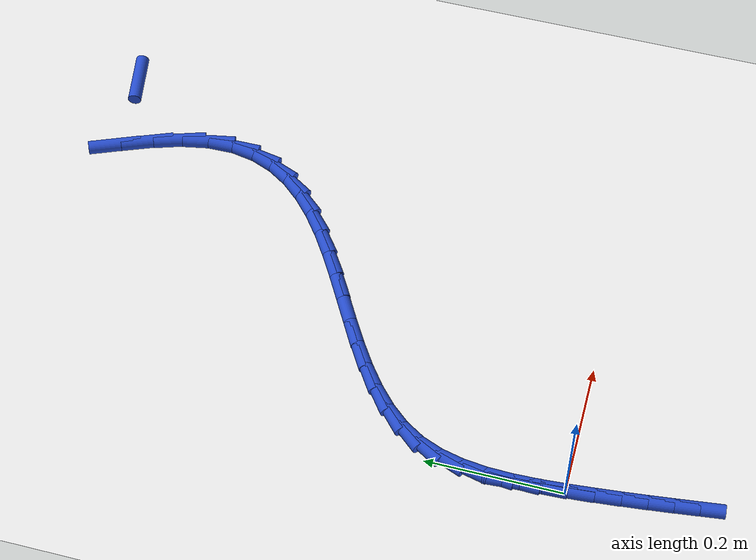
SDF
<sdf version="1.6">
 <world name="default">
  <model name="ground_plane">
   <static>1</static>
   <link name="link">
    <collision name="collision">
     <geometry><plane><normal>0 0 1</normal><size>100 100</size></plane></geometry>
     <surface><friction><ode><mu>100</mu><mu2>50</mu2></ode></friction></surface>
    </collision>
    <visual name="visual">
     <cast_shadows>0</cast_shadows>
     <geometry><plane><normal>0 0 1</normal><size>100 100</size></plane></geometry>
     <material>
      <script><uri>file://media/materials/scripts/gazebo.material</uri><name>Gazebo/WhiteGlow</name></script>
     </material>
    </visual>
   </link>
  </model>
  <model name="line">
   <link name="link_0">
    <pose>-3.469446951953614e-18 -4.85722573273506e-17 0.01 0 1.57 -1.5035557970851146</pose>
    <collision name="collision">
     <geometry><cylinder><radius>0.01</radius><length>0.08</length></cylinder></geometry>
    </collision>
    <visual name="visual">
     <material>
      <script><name>Gazebo/Blue</name><uri>file://media/materials/scripts/gazebo.material</uri></script>
     </material>
     <geometry><cylinder><radius>0.01</radius><length>0.08</length></cylinder></geometry>
    </visual>
   </link>
   <link name="link_1">
    <pose>-0.002491275513340506 0.03699435146968724 0.01 0 1.57 -1.5390851107611019</pose>
    <collision name="collision">
     <geometry><cylinder><radius>0.01</radius><length>0.08</length></cylinder></geometry>
    </collision>
    <visual name="visual">
     <material>
      <script><name>Gazebo/Blue</name><uri>file://media/materials/scripts/gazebo.material</uri></script>
     </material>
     <geometry><cylinder><radius>0.01</radius><length>0.08</length></cylinder></geometry>
    </visual>
   </link>
   <link name="link_2">
    <pose>-0.003666950472739593 0.0740563438259258 0.01 0 1.57 1.544068257868982</pose>
    <collision name="collision">
     <geometry><cylinder><radius>0.01</radius><length>0.08</length></cylinder></geometry>
    </collision>
    <visual name="visual">
     <material>
      <script><name>Gazebo/Blue</name><uri>file://media/materials/scripts/gazebo.material</uri></script>
     </material>
     <geometry><cylinder><radius>0.01</radius><length>0.08</length></cylinder></geometry>
    </visual>
   </link>
   <link name="link_3">
    <pose>-0.002689838309753529 0.11060516727441508 0.01 0 1.57 1.4593685758182837</pose>
    <collision name="collision">
     <geometry><cylinder><radius>0.01</radius><length>0.08</length></cylinder></geometry>
    </collision>
    <visual name="visual">
     <material>
      <script><name>Gazebo/Blue</name><uri>file://media/materials/scripts/gazebo.material</uri></script>
     </material>
     <geometry><cylinder><radius>0.01</radius><length>0.08</length></cylinder></geometry>
    </visual>
   </link>
   <link name="link_4">
    <pose>0.0012772475440614248 0.14606001202085456 0.01 0 1.57 1.344029843109757</pose>
    <collision name="collision">
     <geometry><cylinder><radius>0.01</radius><length>0.08</length></cylinder></geometry>
    </collision>
    <visual name="visual">
     <material>
      <script><name>Gazebo/Blue</name><uri>file://media/materials/scripts/gazebo.material</uri></script>
     </material>
     <geometry><cylinder><radius>0.01</radius><length>0.08</length></cylinder></geometry>
    </visual>
   </link>
   <link name="link_5">
    <pose>0.009071493657149004 0.1798400682709437 0.01 0 1.57 1.1944312286605236</pose>
    <collision name="collision">
     <geometry><cylinder><radius>0.01</radius><length>0.08</length></cylinder></geometry>
    </collision>
    <visual name="visual">
     <material>
      <script><name>Gazebo/Blue</name><uri>file://media/materials/scripts/gazebo.material</uri></script>
     </material>
     <geometry><cylinder><radius>0.01</radius><length>0.08</length></cylinder></geometry>
    </visual>
   </link>
   <link name="link_6">
    <pose>0.021530086597952955 0.21136452623038188 0.01 0 1.57 1.0179082269758917</pose>
    <collision name="collision">
     <geometry><cylinder><radius>0.01</radius><length>0.08</length></cylinder></geometry>
    </collision>
    <visual name="visual">
     <material>
      <script><name>Gazebo/Blue</name><uri>file://media/materials/scripts/gazebo.material</uri></script>
     </material>
     <geometry><cylinder><radius>0.01</radius><length>0.08</length></cylinder></geometry>
    </visual>
   </link>
   <link name="link_7">
    <pose>0.039303809747562375 0.24016719398791558 0.01 0 1.57 0.8589541591372676</pose>
    <collision name="collision">
     <geometry><cylinder><radius>0.01</radius><length>0.08</length></cylinder></geometry>
    </collision>
    <visual name="visual">
     <material>
      <script><name>Gazebo/Blue</name><uri>file://media/materials/scripts/gazebo.material</uri></script>
     </material>
     <geometry><cylinder><radius>0.01</radius><length>0.08</length></cylinder></geometry>
    </visual>
   </link>
   <link name="link_8">
    <pose>0.06197130474744068 0.26644113132356484 0.01 0 1.57 0.7347092351452045</pose>
    <collision name="collision">
     <geometry><cylinder><radius>0.01</radius><length>0.08</length></cylinder></geometry>
    </collision>
    <visual name="visual">
     <material>
      <script><name>Gazebo/Blue</name><uri>file://media/materials/scripts/gazebo.material</uri></script>
     </material>
     <geometry><cylinder><radius>0.01</radius><length>0.08</length></cylinder></geometry>
    </visual>
   </link>
   <link name="link_9">
    <pose>0.08872865000689141 0.29061463319988096 0.01 0 1.57 0.6428521692637451</pose>
    <collision name="collision">
     <geometry><cylinder><radius>0.01</radius><length>0.08</length></cylinder></geometry>
    </collision>
    <visual name="visual">
     <material>
      <script><name>Gazebo/Blue</name><uri>file://media/materials/scripts/gazebo.material</uri></script>
     </material>
     <geometry><cylinder><radius>0.01</radius><length>0.08</length></cylinder></geometry>
    </visual>
   </link>
   <link name="link_10">
    <pose>0.11877145031334191 0.3131162858058559 0.01 0 1.57 0.5789189315583009</pose>
    <collision name="collision">
     <geometry><cylinder><radius>0.01</radius><length>0.08</length></cylinder></geometry>
    </collision>
    <visual name="visual">
     <material>
      <script><name>Gazebo/Blue</name><uri>file://media/materials/scripts/gazebo.material</uri></script>
     </material>
     <geometry><cylinder><radius>0.01</radius><length>0.08</length></cylinder></geometry>
    </visual>
   </link>
   <link name="link_11">
    <pose>0.1512953104542196 0.334374675330482 0.01 0 1.57 0.5387709633680576</pose>
    <collision name="collision">
     <geometry><cylinder><radius>0.01</radius><length>0.08</length></cylinder></geometry>
    </collision>
    <visual name="visual">
     <material>
      <script><name>Gazebo/Blue</name><uri>file://media/materials/scripts/gazebo.material</uri></script>
     </material>
     <geometry><cylinder><radius>0.01</radius><length>0.08</length></cylinder></geometry>
    </visual>
   </link>
   <link name="link_12">
    <pose>0.1854958352169517 0.35481838796275145 0.01 0 1.57 0.519490489495759</pose>
    <collision name="collision">
     <geometry><cylinder><radius>0.01</radius><length>0.08</length></cylinder></geometry>
    </collision>
    <visual name="visual">
     <material>
      <script><name>Gazebo/Blue</name><uri>file://media/materials/scripts/gazebo.material</uri></script>
     </material>
     <geometry><cylinder><radius>0.01</radius><length>0.08</length></cylinder></geometry>
    </visual>
   </link>
   <link name="link_13">
    <pose>0.22056862938896565 0.37487600989165637 0.01 0 1.57 0.5195693823373988</pose>
    <collision name="collision">
     <geometry><cylinder><radius>0.01</radius><length>0.08</length></cylinder></geometry>
    </collision>
    <visual name="visual">
     <material>
      <script><name>Gazebo/Blue</name><uri>file://media/materials/scripts/gazebo.material</uri></script>
     </material>
     <geometry><cylinder><radius>0.01</radius><length>0.08</length></cylinder></geometry>
    </visual>
   </link>
   <link name="link_14">
    <pose>0.25570929775768875 0.3949761273061889 0.01 0 1.57 0.5388944939510351</pose>
    <collision name="collision">
     <geometry><cylinder><radius>0.01</radius><length>0.08</length></cylinder></geometry>
    </collision>
    <visual name="visual">
     <material>
      <script><name>Gazebo/Blue</name><uri>file://media/materials/scripts/gazebo.material</uri></script>
     </material>
     <geometry><cylinder><radius>0.01</radius><length>0.08</length></cylinder></geometry>
    </visual>
   </link>
   <link name="link_15">
    <pose>0.2901134451105483 0.4155473263953413 0.01 0 1.57 0.5787196924934523</pose>
    <collision name="collision">
     <geometry><cylinder><radius>0.01</radius><length>0.08</length></cylinder></geometry>
    </collision>
    <visual name="visual">
     <material>
      <script><name>Gazebo/Blue</name><uri>file://media/materials/scripts/gazebo.material</uri></script>
     </material>
     <geometry><cylinder><radius>0.01</radius><length>0.08</length></cylinder></geometry>
    </visual>
   </link>
   <link name="link_16">
    <pose>0.3229766762349717 0.43701819334810554 0.01 0 1.57 0.6416253466932331</pose>
    <collision name="collision">
     <geometry><cylinder><radius>0.01</radius><length>0.08</length></cylinder></geometry>
    </collision>
    <visual name="visual">
     <material>
      <script><name>Gazebo/Blue</name><uri>file://media/materials/scripts/gazebo.material</uri></script>
     </material>
     <geometry><cylinder><radius>0.01</radius><length>0.08</length></cylinder></geometry>
    </visual>
   </link>
   <link name="link_17">
    <pose>0.3534945959183864 0.45981731435347417 0.01 0 1.57 0.7312902869597495</pose>
    <collision name="collision">
     <geometry><cylinder><radius>0.01</radius><length>0.08</length></cylinder></geometry>
    </collision>
    <visual name="visual">
     <material>
      <script><name>Gazebo/Blue</name><uri>file://media/materials/scripts/gazebo.material</uri></script>
     </material>
     <geometry><cylinder><radius>0.01</radius><length>0.08</length></cylinder></geometry>
    </visual>
   </link>
   <link name="link_18">
    <pose>0.38086280894821944 0.48437327560043886 0.01 0 1.57 0.8516403191764031</pose>
    <collision name="collision">
     <geometry><cylinder><radius>0.01</radius><length>0.08</length></cylinder></geometry>
    </collision>
    <visual name="visual">
     <material>
      <script><name>Gazebo/Blue</name><uri>file://media/materials/scripts/gazebo.material</uri></script>
     </material>
     <geometry><cylinder><radius>0.01</radius><length>0.08</length></cylinder></geometry>
    </visual>
   </link>
   <link name="link_19">
    <pose>0.4042769201118985 0.5111146632779923 0.01 0 1.57 1.0046758146772399</pose>
    <collision name="collision">
     <geometry><cylinder><radius>0.01</radius><length>0.08</length></cylinder></geometry>
    </collision>
    <visual name="visual">
     <material>
      <script><name>Gazebo/Blue</name><uri>file://media/materials/scripts/gazebo.material</uri></script>
     </material>
     <geometry><cylinder><radius>0.01</radius><length>0.08</length></cylinder></geometry>
    </visual>
   </link>
   <link name="link_20">
    <pose>0.4229325341968506 0.5404700635751262 0.01 0 1.57 1.1867421542903942</pose>
    <collision name="collision">
     <geometry><cylinder><radius>0.01</radius><length>0.08</length></cylinder></geometry>
    </collision>
    <visual name="visual">
     <material>
      <script><name>Gazebo/Blue</name><uri>file://media/materials/scripts/gazebo.material</uri></script>
     </material>
     <geometry><cylinder><radius>0.01</radius><length>0.08</length></cylinder></geometry>
    </visual>
   </link>
   <link name="link_21">
    <pose>0.43602525599050346 0.5728680626808331 0.01 0 1.57 1.3854493929418508</pose>
    <collision name="collision">
     <geometry><cylinder><radius>0.01</radius><length>0.08</length></cylinder></geometry>
    </collision>
    <visual name="visual">
     <material>
      <script><name>Gazebo/Blue</name><uri>file://media/materials/scripts/gazebo.material</uri></script>
     </material>
     <geometry><cylinder><radius>0.01</radius><length>0.08</length></cylinder></geometry>
    </visual>
   </link>
   <link name="link_22">
    <pose>0.4427506902802841 0.608737246784105 0.01 0 1.57 -1.5595757730847697</pose>
    <collision name="collision">
     <geometry><cylinder><radius>0.01</radius><length>0.08</length></cylinder></geometry>
    </collision>
    <visual name="visual">
     <material>
      <script><name>Gazebo/Blue</name><uri>file://media/materials/scripts/gazebo.material</uri></script>
     </material>
     <geometry><cylinder><radius>0.01</radius><length>0.08</length></cylinder></geometry>
    </visual>
   </link>
   <link name="link_23">
    <pose>0.44230444185361995 0.648506202073934 0.01 0 1.57 -1.3822785067163863</pose>
    <collision name="collision">
     <geometry><cylinder><radius>0.01</radius><length>0.08</length></cylinder></geometry>
    </collision>
    <visual name="visual">
     <material>
      <script><name>Gazebo/Blue</name><uri>file://media/materials/scripts/gazebo.material</uri></script>
     </material>
     <geometry><cylinder><radius>0.01</radius><length>0.08</length></cylinder></geometry>
    </visual>
   </link>
   <link name="link_24">
    <pose>0.43389350201613186 0.6925925608759059 0.01 0 1.57 -1.2538148254085466</pose>
    <collision name="collision">
     <geometry><cylinder><radius>0.01</radius><length>0.08</length></cylinder></geometry>
    </collision>
    <visual name="visual">
     <material>
      <script><name>Gazebo/Blue</name><uri>file://media/materials/scripts/gazebo.material</uri></script>
     </material>
     <geometry><cylinder><radius>0.01</radius><length>0.08</length></cylinder></geometry>
    </visual>
   </link>
   <link name="link_25">
    <pose>0.4184096928314629 0.7397931434576318 0.01 0 1.57 -1.1922383402729906</pose>
    <collision name="collision">
     <geometry><cylinder><radius>0.01</radius><length>0.08</length></cylinder></geometry>
    </collision>
    <visual name="visual">
     <material>
      <script><name>Gazebo/Blue</name><uri>file://media/materials/scripts/gazebo.material</uri></script>
     </material>
     <geometry><cylinder><radius>0.01</radius><length>0.08</length></cylinder></geometry>
    </visual>
   </link>
   <link name="link_26">
    <pose>0.400196758983007 0.7855840105512915 0.01 0 1.57 -1.1816825938432873</pose>
    <collision name="collision">
     <geometry><cylinder><radius>0.01</radius><length>0.08</length></cylinder></geometry>
    </collision>
    <visual name="visual">
     <material>
      <script><name>Gazebo/Blue</name><uri>file://media/materials/scripts/gazebo.material</uri></script>
     </material>
     <geometry><cylinder><radius>0.01</radius><length>0.08</length></cylinder></geometry>
    </visual>
   </link>
   <link name="link_34">
    <pose>0.5299976168033949 0.7916507133591806 0.01 0 1.57 0.16235223265066762</pose>
    <collision name="collision">
     <geometry><cylinder><radius>0.01</radius><length>0.08</length></cylinder></geometry>
    </collision>
    <visual name="visual">
     <material>
      <script><name>Gazebo/Blue</name><uri>file://media/materials/scripts/gazebo.material</uri></script>
     </material>
     <geometry><cylinder><radius>0.01</radius><length>0.08</length></cylinder></geometry>
    </visual>
   </link>
   <link name="link_285">
    <pose>0.01861535908639814 -0.17687314558217002 0.01 0 1.57 -1.449730473829785</pose>
    <collision name="collision">
     <geometry><cylinder><radius>0.01</radius><length>0.08</length></cylinder></geometry>
    </collision>
    <visual name="visual">
     <material>
      <script><name>Gazebo/Blue</name><uri>file://media/materials/scripts/gazebo.material</uri></script>
     </material>
     <geometry><cylinder><radius>0.01</radius><length>0.08</length></cylinder></geometry>
    </visual>
   </link>
   <link name="link_286">
    <pose>0.01442934581422729 -0.14246590542547674 0.01 0 1.57 -1.4554291893734033</pose>
    <collision name="collision">
     <geometry><cylinder><radius>0.01</radius><length>0.08</length></cylinder></geometry>
    </collision>
    <visual name="visual">
     <material>
      <script><name>Gazebo/Blue</name><uri>file://media/materials/scripts/gazebo.material</uri></script>
     </material>
     <geometry><cylinder><radius>0.01</radius><length>0.08</length></cylinder></geometry>
    </visual>
   </link>
   <link name="link_287">
    <pose>0.010392488850151366 -0.1076298895225736 0.01 0 1.57 -1.4634691884260487</pose>
    <collision name="collision">
     <geometry><cylinder><radius>0.01</radius><length>0.08</length></cylinder></geometry>
    </collision>
    <visual name="visual">
     <material>
      <script><name>Gazebo/Blue</name><uri>file://media/materials/scripts/gazebo.material</uri></script>
     </material>
     <geometry><cylinder><radius>0.01</radius><length>0.08</length></cylinder></geometry>
    </visual>
   </link>
   <link name="link_288">
    <pose>0.006587102613521051 -0.07231017913980016 0.01 0 1.57 -1.4737302041513054</pose>
    <collision name="collision">
     <geometry><cylinder><radius>0.01</radius><length>0.08</length></cylinder></geometry>
    </collision>
    <visual name="visual">
     <material>
      <script><name>Gazebo/Blue</name><uri>file://media/materials/scripts/gazebo.material</uri></script>
     </material>
     <geometry><cylinder><radius>0.01</radius><length>0.08</length></cylinder></geometry>
    </visual>
   </link>
   <link name="link_289">
    <pose>0.0030955015236870395 -0.03645185554349588 0.01 0 1.57 -1.4860793079199994</pose>
    <collision name="collision">
     <geometry><cylinder><radius>0.01</radius><length>0.08</length></cylinder></geometry>
    </collision>
    <visual name="visual">
     <material>
      <script><name>Gazebo/Blue</name><uri>file://media/materials/scripts/gazebo.material</uri></script>
     </material>
     <geometry><cylinder><radius>0.01</radius><length>0.08</length></cylinder></geometry>
    </visual>
   </link>
   <link name="link_290">
    <pose>1.452830911130576e-17 -2.0816681711721685e-16 0.01 0 1.57 -1.5003721219528916</pose>
    <collision name="collision">
     <geometry><cylinder><radius>0.01</radius><length>0.08</length></cylinder></geometry>
    </collision>
    <visual name="visual">
     <material>
      <script><name>Gazebo/Blue</name><uri>file://media/materials/scripts/gazebo.material</uri></script>
     </material>
     <geometry><cylinder><radius>0.01</radius><length>0.08</length></cylinder></geometry>
    </visual>
   </link>
   <link name="link_291">
    <pose>-0.00261708753818926 0.037100306224346104 0.01 0 1.57 -1.516454136341911</pose>
    <collision name="collision">
     <geometry><cylinder><radius>0.01</radius><length>0.08</length></cylinder></geometry>
    </collision>
    <visual name="visual">
     <material>
      <script><name>Gazebo/Blue</name><uri>file://media/materials/scripts/gazebo.material</uri></script>
     </material>
     <geometry><cylinder><radius>0.01</radius><length>0.08</length></cylinder></geometry>
    </visual>
   </link>
   <link name="link_292">
    <pose>-0.0046734466715303204 0.0749039818632072 0.01 0 1.57 -1.508484599451599</pose>
    <collision name="collision">
     <geometry><cylinder><radius>0.01</radius><length>0.08</length></cylinder></geometry>
    </collision>
    <visual name="visual">
     <material>
      <script><name>Gazebo/Blue</name><uri>file://media/materials/scripts/gazebo.material</uri></script>
     </material>
     <geometry><cylinder><radius>0.01</radius><length>0.08</length></cylinder></geometry>
    </visual>
   </link>
  </model>
 </world>
</sdf>
